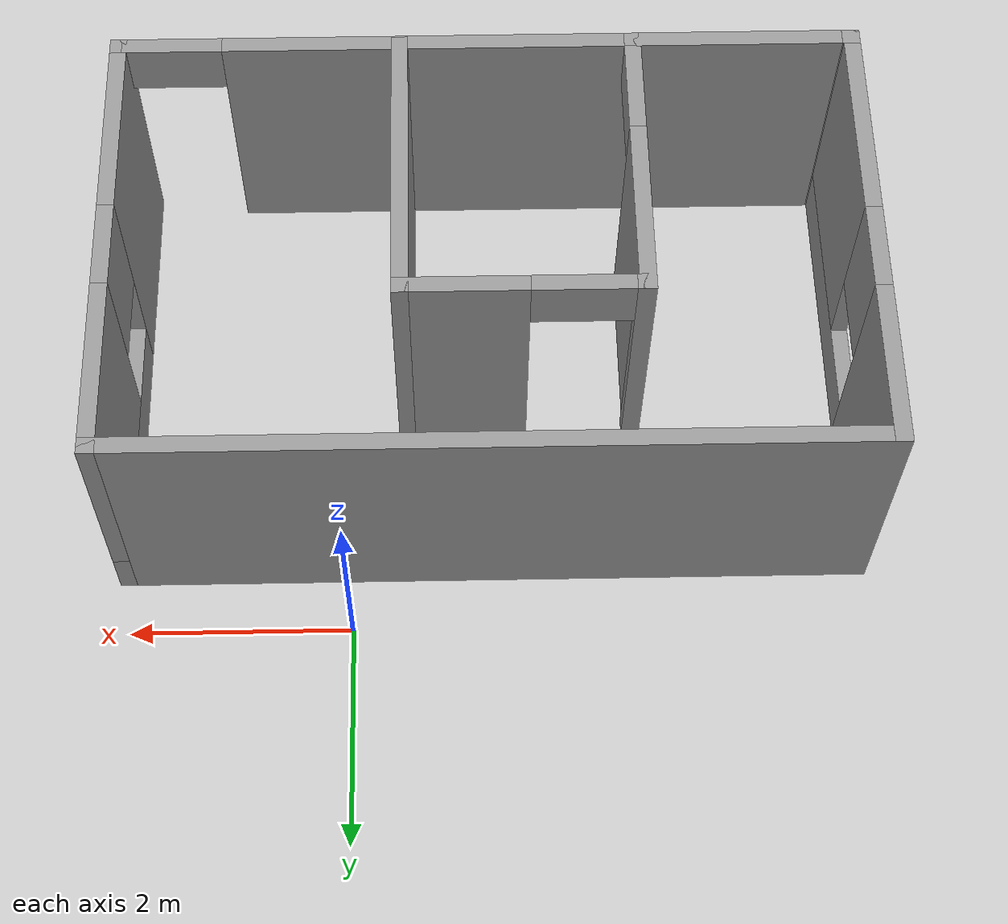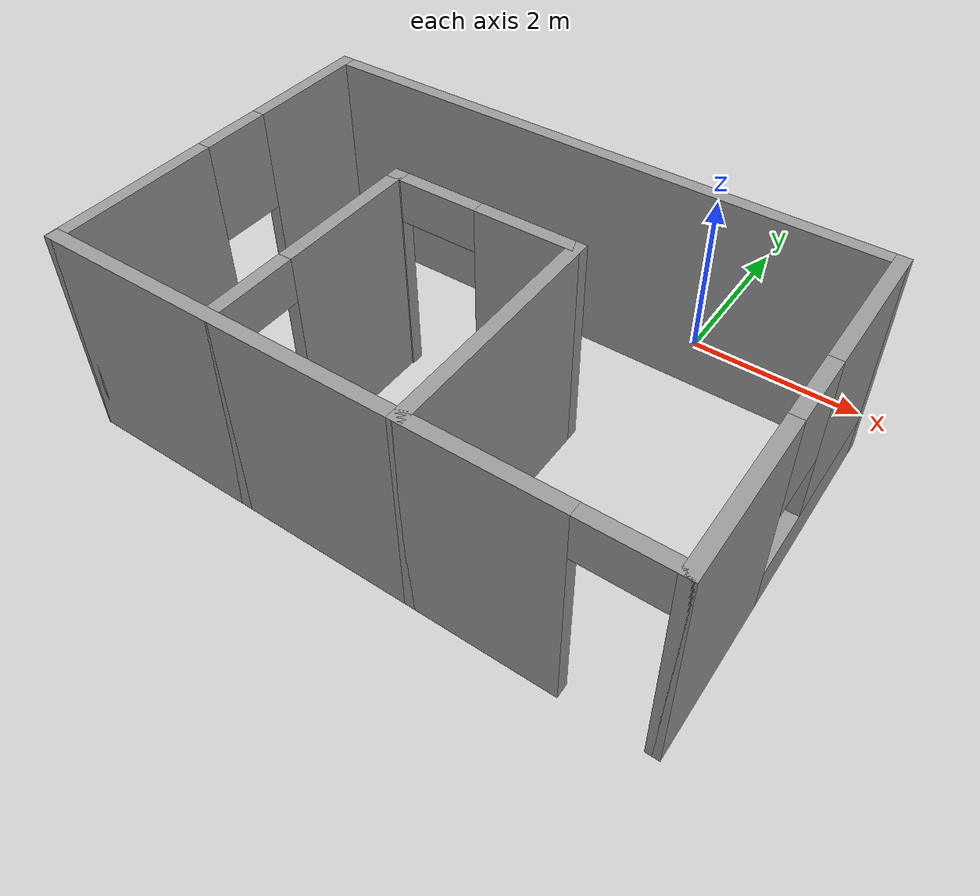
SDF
<?xml version='1.0'?>
<sdf version='1.7'>
  <model name='house.world'>
    <pose>-1.265 -2.3675 0 0 -0 0</pose>
    <link name='Wall_0'>
      <pose>-3.305 -0.2425 0 0 -0 -1.5708</pose>
      <visual name='Wall_0_Visual_0'>
        <pose>-1.3725 0 1.25 0 -0 0</pose>
        <geometry>
          <box>
            <size>1.505 0.15 2.5</size>
          </box>
        </geometry>
        <material>
          <script>
            <uri>file://media/materials/scripts/gazebo.material</uri>
            <name>Gazebo/Grey</name>
          </script>
          <ambient>1 1 1 1</ambient>
        </material>
        <meta>
          <layer>0</layer>
        </meta>
      </visual>
      <collision name='Wall_0_Collision_0'>
        <geometry>
          <box>
            <size>1.505 0.15 2.5</size>
          </box>
        </geometry>
        <pose>-1.3725 0 1.25 0 -0 0</pose>
      </collision>
      <visual name='Wall_0_Visual_1'>
        <pose>0.7525 0 0.25 0 -0 0</pose>
        <geometry>
          <box>
            <size>2.745 0.15 0.5</size>
          </box>
        </geometry>
        <material>
          <script>
            <uri>file://media/materials/scripts/gazebo.material</uri>
            <name>Gazebo/Grey</name>
          </script>
          <ambient>1 1 1 1</ambient>
        </material>
        <meta>
          <layer>0</layer>
        </meta>
      </visual>
      <collision name='Wall_0_Collision_1'>
        <geometry>
          <box>
            <size>2.745 0.15 0.5</size>
          </box>
        </geometry>
        <pose>0.7525 0 0.25 0 -0 0</pose>
      </collision>
      <visual name='Wall_0_Visual_2'>
        <pose>1.1525 0 1.5 0 -0 0</pose>
        <geometry>
          <box>
            <size>1.945 0.15 2</size>
          </box>
        </geometry>
        <material>
          <script>
            <uri>file://media/materials/scripts/gazebo.material</uri>
            <name>Gazebo/Grey</name>
          </script>
          <ambient>1 1 1 1</ambient>
        </material>
        <meta>
          <layer>0</layer>
        </meta>
      </visual>
      <collision name='Wall_0_Collision_2'>
        <geometry>
          <box>
            <size>1.945 0.15 2</size>
          </box>
        </geometry>
        <pose>1.1525 0 1.5 0 -0 0</pose>
      </collision>
      <visual name='Wall_0_Visual_3'>
        <pose>-0.22 0 1.9 0 -0 0</pose>
        <geometry>
          <box>
            <size>0.8 0.15 1.2</size>
          </box>
        </geometry>
        <material>
          <script>
            <uri>file://media/materials/scripts/gazebo.material</uri>
            <name>Gazebo/Grey</name>
          </script>
          <ambient>1 1 1 1</ambient>
        </material>
        <meta>
          <layer>0</layer>
        </meta>
      </visual>
      <collision name='Wall_0_Collision_3'>
        <geometry>
          <box>
            <size>0.8 0.15 1.2</size>
          </box>
        </geometry>
        <pose>-0.22 0 1.9 0 -0 0</pose>
      </collision>
    </link>
    <link name='Wall_1'>
      <collision name='Wall_1_Collision'>
        <geometry>
          <box>
            <size>0.16 0.15 2.5</size>
          </box>
        </geometry>
        <pose>0 0 1.25 0 -0 0</pose>
      </collision>
      <visual name='Wall_1_Visual'>
        <pose>0 0 1.25 0 -0 0</pose>
        <geometry>
          <box>
            <size>0.16 0.15 2.5</size>
          </box>
        </geometry>
        <material>
          <script>
            <uri>file://media/materials/scripts/gazebo.material</uri>
            <name>Gazebo/Grey</name>
          </script>
          <ambient>1 1 1 1</ambient>
        </material>
        <meta>
          <layer>0</layer>
        </meta>
      </visual>
      <pose>-3.3 -2.2925 0 0 -0 0</pose>
    </link>
    <link name='Wall_2'>
      <pose>0.005 -2.2925 0 0 -0 0</pose>
      <visual name='Wall_2_Visual_0'>
        <pose>-0.5025 0 1.25 0 -0 0</pose>
        <geometry>
          <box>
            <size>5.745 0.15 2.5</size>
          </box>
        </geometry>
        <material>
          <script>
            <uri>file://media/materials/scripts/gazebo.material</uri>
            <name>Gazebo/Grey</name>
          </script>
          <ambient>1 1 1 1</ambient>
        </material>
        <meta>
          <layer>0</layer>
        </meta>
      </visual>
      <collision name='Wall_2_Collision_0'>
        <geometry>
          <box>
            <size>5.745 0.15 2.5</size>
          </box>
        </geometry>
        <pose>-0.5025 0 1.25 0 -0 0</pose>
      </collision>
      <visual name='Wall_2_Visual_1'>
        <pose>3.3225 0 1.25 0 -0 0</pose>
        <geometry>
          <box>
            <size>0.105 0.15 2.5</size>
          </box>
        </geometry>
        <material>
          <script>
            <uri>file://media/materials/scripts/gazebo.material</uri>
            <name>Gazebo/Grey</name>
          </script>
          <ambient>1 1 1 1</ambient>
        </material>
        <meta>
          <layer>0</layer>
        </meta>
      </visual>
      <collision name='Wall_2_Collision_1'>
        <geometry>
          <box>
            <size>0.105 0.15 2.5</size>
          </box>
        </geometry>
        <pose>3.3225 0 1.25 0 -0 0</pose>
      </collision>
      <visual name='Wall_2_Visual_2'>
        <pose>2.82 0 2.25 0 -0 0</pose>
        <geometry>
          <box>
            <size>0.9 0.15 0.5</size>
          </box>
        </geometry>
        <material>
          <script>
            <uri>file://media/materials/scripts/gazebo.material</uri>
            <name>Gazebo/Grey</name>
          </script>
          <ambient>1 1 1 1</ambient>
        </material>
        <meta>
          <layer>0</layer>
        </meta>
      </visual>
      <collision name='Wall_2_Collision_2'>
        <geometry>
          <box>
            <size>0.9 0.15 0.5</size>
          </box>
        </geometry>
        <pose>2.82 0 2.25 0 -0 0</pose>
      </collision>
    </link>
    <link name='Wall_4'>
      <pose>3.305 -0.2425 0 0 -0 1.5708</pose>
      <visual name='Wall_4_Visual_0'>
        <pose>-1.2175 0 1.25 0 -0 0</pose>
        <geometry>
          <box>
            <size>1.815 0.15 2.5</size>
          </box>
        </geometry>
        <material>
          <script>
            <uri>file://media/materials/scripts/gazebo.material</uri>
            <name>Gazebo/Grey</name>
          </script>
          <ambient>1 1 1 1</ambient>
        </material>
        <meta>
          <layer>0</layer>
        </meta>
      </visual>
      <collision name='Wall_4_Collision_0'>
        <geometry>
          <box>
            <size>1.815 0.15 2.5</size>
          </box>
        </geometry>
        <pose>-1.2175 0 1.25 0 -0 0</pose>
      </collision>
      <visual name='Wall_4_Visual_1'>
        <pose>0.9075 0 0.25 0 -0 0</pose>
        <geometry>
          <box>
            <size>2.435 0.15 0.5</size>
          </box>
        </geometry>
        <material>
          <script>
            <uri>file://media/materials/scripts/gazebo.material</uri>
            <name>Gazebo/Grey</name>
          </script>
          <ambient>1 1 1 1</ambient>
        </material>
        <meta>
          <layer>0</layer>
        </meta>
      </visual>
      <collision name='Wall_4_Collision_1'>
        <geometry>
          <box>
            <size>2.435 0.15 0.5</size>
          </box>
        </geometry>
        <pose>0.9075 0 0.25 0 -0 0</pose>
      </collision>
      <visual name='Wall_4_Visual_2'>
        <pose>1.3075 0 1.5 0 -0 0</pose>
        <geometry>
          <box>
            <size>1.635 0.15 2</size>
          </box>
        </geometry>
        <material>
          <script>
            <uri>file://media/materials/scripts/gazebo.material</uri>
            <name>Gazebo/Grey</name>
          </script>
          <ambient>1 1 1 1</ambient>
        </material>
        <meta>
          <layer>0</layer>
        </meta>
      </visual>
      <collision name='Wall_4_Collision_2'>
        <geometry>
          <box>
            <size>1.635 0.15 2</size>
          </box>
        </geometry>
        <pose>1.3075 0 1.5 0 -0 0</pose>
      </collision>
      <visual name='Wall_4_Visual_3'>
        <pose>0.09 0 1.9 0 -0 0</pose>
        <geometry>
          <box>
            <size>0.8 0.15 1.2</size>
          </box>
        </geometry>
        <material>
          <script>
            <uri>file://media/materials/scripts/gazebo.material</uri>
            <name>Gazebo/Grey</name>
          </script>
          <ambient>1 1 1 1</ambient>
        </material>
        <meta>
          <layer>0</layer>
        </meta>
      </visual>
      <collision name='Wall_4_Collision_3'>
        <geometry>
          <box>
            <size>0.8 0.15 1.2</size>
          </box>
        </geometry>
        <pose>0.09 0 1.9 0 -0 0</pose>
      </collision>
    </link>
    <link name='Wall_5'>
      <collision name='Wall_5_Collision'>
        <geometry>
          <box>
            <size>6.76 0.15 2.5</size>
          </box>
        </geometry>
        <pose>0 0 1.25 0 -0 0</pose>
      </collision>
      <visual name='Wall_5_Visual'>
        <pose>0 0 1.25 0 -0 0</pose>
        <geometry>
          <box>
            <size>6.76 0.15 2.5</size>
          </box>
        </geometry>
        <material>
          <script>
            <uri>file://media/materials/scripts/gazebo.material</uri>
            <name>Gazebo/Grey</name>
          </script>
          <ambient>1 1 1 1</ambient>
        </material>
        <meta>
          <layer>0</layer>
        </meta>
      </visual>
      <pose>0 1.8075 0 0 -0 3.14159</pose>
    </link>
    <link name='Wall_7'>
      <collision name='Wall_7_Collision'>
        <geometry>
          <box>
            <size>2.75 0.15 2.5</size>
          </box>
        </geometry>
        <pose>0 0 1.25 0 -0 0</pose>
      </collision>
      <visual name='Wall_7_Visual'>
        <pose>0 0 1.25 0 -0 0</pose>
        <geometry>
          <box>
            <size>2.75 0.15 2.5</size>
          </box>
        </geometry>
        <material>
          <script>
            <uri>file://media/materials/scripts/gazebo.material</uri>
            <name>Gazebo/Grey</name>
          </script>
          <ambient>1 1 1 1</ambient>
        </material>
        <meta>
          <layer>0</layer>
        </meta>
      </visual>
      <pose>0.775 -0.9925 0 0 -0 1.5708</pose>
    </link>
    <link name='Wall_8'>
      <pose>-0.275 0.3075 0 0 -0 3.14159</pose>
      <visual name='Wall_8_Visual_0'>
        <pose>-0.5325 0 1.25 0 -0 0</pose>
        <geometry>
          <box>
            <size>1.185 0.15 2.5</size>
          </box>
        </geometry>
        <material>
          <script>
            <uri>file://media/materials/scripts/gazebo.material</uri>
            <name>Gazebo/Grey</name>
          </script>
          <ambient>1 1 1 1</ambient>
        </material>
        <meta>
          <layer>0</layer>
        </meta>
      </visual>
      <collision name='Wall_8_Collision_0'>
        <geometry>
          <box>
            <size>1.185 0.15 2.5</size>
          </box>
        </geometry>
        <pose>-0.5325 0 1.25 0 -0 0</pose>
      </collision>
      <visual name='Wall_8_Visual_1'>
        <pose>1.0425 0 1.25 0 -0 0</pose>
        <geometry>
          <box>
            <size>0.165 0.15 2.5</size>
          </box>
        </geometry>
        <material>
          <script>
            <uri>file://media/materials/scripts/gazebo.material</uri>
            <name>Gazebo/Grey</name>
          </script>
          <ambient>1 1 1 1</ambient>
        </material>
        <meta>
          <layer>0</layer>
        </meta>
      </visual>
      <collision name='Wall_8_Collision_1'>
        <geometry>
          <box>
            <size>0.165 0.15 2.5</size>
          </box>
        </geometry>
        <pose>1.0425 0 1.25 0 -0 0</pose>
      </collision>
      <visual name='Wall_8_Visual_2'>
        <pose>0.51 0 2.25 0 -0 0</pose>
        <geometry>
          <box>
            <size>0.9 0.15 0.5</size>
          </box>
        </geometry>
        <material>
          <script>
            <uri>file://media/materials/scripts/gazebo.material</uri>
            <name>Gazebo/Grey</name>
          </script>
          <ambient>1 1 1 1</ambient>
        </material>
        <meta>
          <layer>0</layer>
        </meta>
      </visual>
      <collision name='Wall_8_Collision_2'>
        <geometry>
          <box>
            <size>0.9 0.15 0.5</size>
          </box>
        </geometry>
        <pose>0.51 0 2.25 0 -0 0</pose>
      </collision>
    </link>
    <link name='Wall_9'>
      <pose>-1.325 -0.9925 0 0 -0 -1.5708</pose>
      <visual name='Wall_9_Visual_0'>
        <pose>-0.5225 0 1.25 0 -0 0</pose>
        <geometry>
          <box>
            <size>1.705 0.15 2.5</size>
          </box>
        </geometry>
        <material>
          <script>
            <uri>file://media/materials/scripts/gazebo.material</uri>
            <name>Gazebo/Grey</name>
          </script>
          <ambient>1 1 1 1</ambient>
        </material>
        <meta>
          <layer>0</layer>
        </meta>
      </visual>
      <collision name='Wall_9_Collision_0'>
        <geometry>
          <box>
            <size>1.705 0.15 2.5</size>
          </box>
        </geometry>
        <pose>-0.5225 0 1.25 0 -0 0</pose>
      </collision>
      <visual name='Wall_9_Visual_1'>
        <pose>1.3025 0 1.25 0 -0 0</pose>
        <geometry>
          <box>
            <size>0.145 0.15 2.5</size>
          </box>
        </geometry>
        <material>
          <script>
            <uri>file://media/materials/scripts/gazebo.material</uri>
            <name>Gazebo/Grey</name>
          </script>
          <ambient>1 1 1 1</ambient>
        </material>
        <meta>
          <layer>0</layer>
        </meta>
      </visual>
      <collision name='Wall_9_Collision_1'>
        <geometry>
          <box>
            <size>0.145 0.15 2.5</size>
          </box>
        </geometry>
        <pose>1.3025 0 1.25 0 -0 0</pose>
      </collision>
      <visual name='Wall_9_Visual_2'>
        <pose>0.78 0 2.25 0 -0 0</pose>
        <geometry>
          <box>
            <size>0.9 0.15 0.5</size>
          </box>
        </geometry>
        <material>
          <script>
            <uri>file://media/materials/scripts/gazebo.material</uri>
            <name>Gazebo/Grey</name>
          </script>
          <ambient>1 1 1 1</ambient>
        </material>
        <meta>
          <layer>0</layer>
        </meta>
      </visual>
      <collision name='Wall_9_Collision_2'>
        <geometry>
          <box>
            <size>0.9 0.15 0.5</size>
          </box>
        </geometry>
        <pose>0.78 0 2.25 0 -0 0</pose>
      </collision>
    </link>
    <static>1</static>
  </model>
</sdf>
